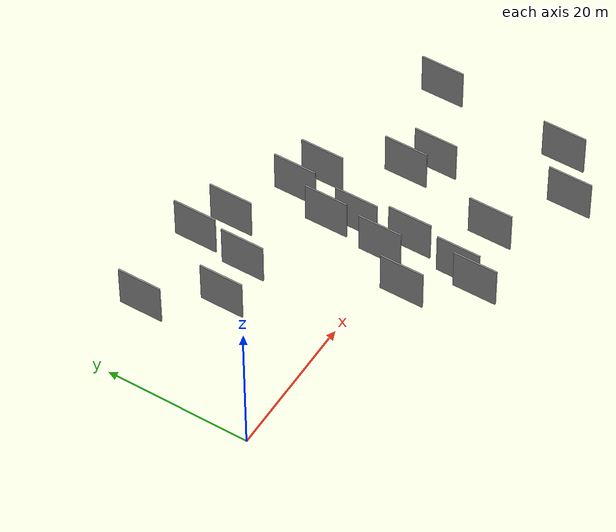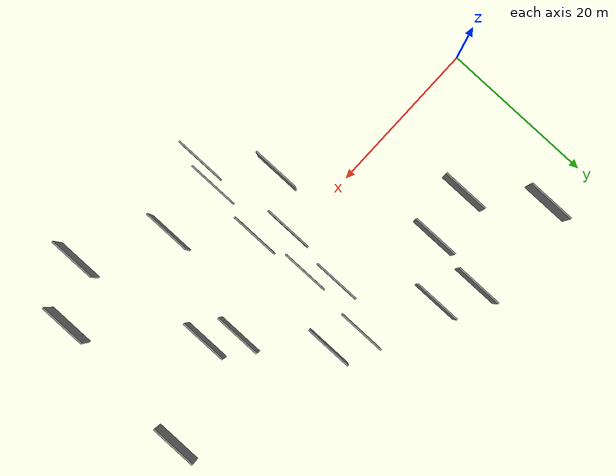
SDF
<sdf version="1.6">
 <world name="default">
  <scene>
   <sky><clouds><speed>12</speed></clouds></sky>
   <ambient>0.4 0.4 0.4 1</ambient>
   <background>0.7 0.7 0.7 1</background>
   <shadows>1</shadows>
  </scene>
  <gravity>0 0 -9.8066</gravity>
  <magnetic_field>6e-06 2.3e-05 -4.2e-05</magnetic_field>
  <physics default="0" name="default_physics" type="ode">
   <ode>
    <solver>
     <type>quick</type>
     <iters>10</iters>
     <sor>1.0</sor>
     <use_dynamic_moi_rescaling>0</use_dynamic_moi_rescaling>
    </solver>
    <constraints>
     <cfm>0</cfm>
     <erp>0.2</erp>
     <contact_max_correcting_vel>100</contact_max_correcting_vel>
     <contact_surface_layer>0.001</contact_surface_layer>
    </constraints>
   </ode>
   <max_step_size>0.004</max_step_size>
   <real_time_factor>1</real_time_factor>
   <real_time_update_rate>250</real_time_update_rate>
  </physics>
  <light name="sun" type="directional">
   <pose>0 0 10 0 0 0</pose>
   <diffuse>0.8 0.8 0.8 1</diffuse>
   <specular>0.2 0.2 0.2 1</specular>
   <attenuation>
    <range>1000</range>
    <constant>0.9</constant>
    <linear>0.01</linear>
    <quadratic>0.001</quadratic>
   </attenuation>
   <direction>-0.5 0.1 -0.9</direction>
  </light>
  <model name="grey_wall_1">
   <static>1</static>
   <pose>48.6045 -16.3556 5.0 0.000000 0.000000 1.570796</pose>
   <link name="link">
    <pose>0 0 3.00 0 0 0</pose>
    <collision name="collision"><geometry><box><size>6.00 0.2 6.00</size></box></geometry></collision>
    <visual name="visual">
     <cast_shadows>0</cast_shadows>
     <geometry><box><size>6.00 0.2 6.00</size></box></geometry>
     <material>
      <script>
       <uri>model://grey_wall/materials/scripts</uri>
       <uri>model://grey_wall/materials/textures</uri>
       <name>vrc/grey_wall</name>
      </script>
     </material>
    </visual>
   </link>
  </model>
  <model name="grey_wall_2">
   <static>1</static>
   <pose>6.7649 19.5103 5.0 0.000000 0.000000 1.570796</pose>
   <link name="link">
    <pose>0 0 3.00 0 0 0</pose>
    <collision name="collision"><geometry><box><size>6.00 0.2 6.00</size></box></geometry></collision>
    <visual name="visual">
     <cast_shadows>0</cast_shadows>
     <geometry><box><size>6.00 0.2 6.00</size></box></geometry>
     <material>
      <script>
       <uri>model://grey_wall/materials/scripts</uri>
       <uri>model://grey_wall/materials/textures</uri>
       <name>vrc/grey_wall</name>
      </script>
     </material>
    </visual>
   </link>
  </model>
  <model name="grey_wall_3">
   <static>1</static>
   <pose>18.6656 12.4914 5.0 0.000000 0.000000 1.570796</pose>
   <link name="link">
    <pose>0 0 3.00 0 0 0</pose>
    <collision name="collision"><geometry><box><size>6.00 0.2 6.00</size></box></geometry></collision>
    <visual name="visual">
     <cast_shadows>0</cast_shadows>
     <geometry><box><size>6.00 0.2 6.00</size></box></geometry>
     <material>
      <script>
       <uri>model://grey_wall/materials/scripts</uri>
       <uri>model://grey_wall/materials/textures</uri>
       <name>vrc/grey_wall</name>
      </script>
     </material>
    </visual>
   </link>
  </model>
  <model name="grey_wall_4">
   <static>1</static>
   <pose>12.4944 11.5218 5.0 0.000000 0.000000 1.570796</pose>
   <link name="link">
    <pose>0 0 3.00 0 0 0</pose>
    <collision name="collision"><geometry><box><size>6.00 0.2 6.00</size></box></geometry></collision>
    <visual name="visual">
     <cast_shadows>0</cast_shadows>
     <geometry><box><size>6.00 0.2 6.00</size></box></geometry>
     <material>
      <script>
       <uri>model://grey_wall/materials/scripts</uri>
       <uri>model://grey_wall/materials/textures</uri>
       <name>vrc/grey_wall</name>
      </script>
     </material>
    </visual>
   </link>
  </model>
  <model name="grey_wall_5">
   <static>1</static>
   <pose>38.9954 -10.5758 5.0 0.000000 0.000000 1.570796</pose>
   <link name="link">
    <pose>0 0 3.00 0 0 0</pose>
    <collision name="collision"><geometry><box><size>6.00 0.2 6.00</size></box></geometry></collision>
    <visual name="visual">
     <cast_shadows>0</cast_shadows>
     <geometry><box><size>6.00 0.2 6.00</size></box></geometry>
     <material>
      <script>
       <uri>model://grey_wall/materials/scripts</uri>
       <uri>model://grey_wall/materials/textures</uri>
       <name>vrc/grey_wall</name>
      </script>
     </material>
    </visual>
   </link>
  </model>
  <model name="grey_wall_6">
   <static>1</static>
   <pose>30.4145 -13.4627 5.0 0.000000 0.000000 1.570796</pose>
   <link name="link">
    <pose>0 0 3.00 0 0 0</pose>
    <collision name="collision"><geometry><box><size>6.00 0.2 6.00</size></box></geometry></collision>
    <visual name="visual">
     <cast_shadows>0</cast_shadows>
     <geometry><box><size>6.00 0.2 6.00</size></box></geometry>
     <material>
      <script>
       <uri>model://grey_wall/materials/scripts</uri>
       <uri>model://grey_wall/materials/textures</uri>
       <name>vrc/grey_wall</name>
      </script>
     </material>
    </visual>
   </link>
  </model>
  <model name="grey_wall_7">
   <static>1</static>
   <pose>32.5522 -2.9268 5.0 0.000000 0.000000 1.570796</pose>
   <link name="link">
    <pose>0 0 3.00 0 0 0</pose>
    <collision name="collision"><geometry><box><size>6.00 0.2 6.00</size></box></geometry></collision>
    <visual name="visual">
     <cast_shadows>0</cast_shadows>
     <geometry><box><size>6.00 0.2 6.00</size></box></geometry>
     <material>
      <script>
       <uri>model://grey_wall/materials/scripts</uri>
       <uri>model://grey_wall/materials/textures</uri>
       <name>vrc/grey_wall</name>
      </script>
     </material>
    </visual>
   </link>
  </model>
  <model name="grey_wall_8">
   <static>1</static>
   <pose>24.0452 17.6752 5.0 0.000000 0.000000 1.570796</pose>
   <link name="link">
    <pose>0 0 3.00 0 0 0</pose>
    <collision name="collision"><geometry><box><size>6.00 0.2 6.00</size></box></geometry></collision>
    <visual name="visual">
     <cast_shadows>0</cast_shadows>
     <geometry><box><size>6.00 0.2 6.00</size></box></geometry>
     <material>
      <script>
       <uri>model://grey_wall/materials/scripts</uri>
       <uri>model://grey_wall/materials/textures</uri>
       <name>vrc/grey_wall</name>
      </script>
     </material>
    </visual>
   </link>
  </model>
  <model name="grey_wall_9">
   <static>1</static>
   <pose>19.4940 19.9250 5.0 0.000000 0.000000 1.570796</pose>
   <link name="link">
    <pose>0 0 3.00 0 0 0</pose>
    <collision name="collision"><geometry><box><size>6.00 0.2 6.00</size></box></geometry></collision>
    <visual name="visual">
     <cast_shadows>0</cast_shadows>
     <geometry><box><size>6.00 0.2 6.00</size></box></geometry>
     <material>
      <script>
       <uri>model://grey_wall/materials/scripts</uri>
       <uri>model://grey_wall/materials/textures</uri>
       <name>vrc/grey_wall</name>
      </script>
     </material>
    </visual>
   </link>
  </model>
  <model name="grey_wall_10">
   <static>1</static>
   <pose>42.2725 3.4707 5.0 0.000000 0.000000 1.570796</pose>
   <link name="link">
    <pose>0 0 3.00 0 0 0</pose>
    <collision name="collision"><geometry><box><size>6.00 0.2 6.00</size></box></geometry></collision>
    <visual name="visual">
     <cast_shadows>0</cast_shadows>
     <geometry><box><size>6.00 0.2 6.00</size></box></geometry>
     <material>
      <script>
       <uri>model://grey_wall/materials/scripts</uri>
       <uri>model://grey_wall/materials/textures</uri>
       <name>vrc/grey_wall</name>
      </script>
     </material>
    </visual>
   </link>
  </model>
  <model name="grey_wall_11">
   <static>1</static>
   <pose>29.3836 -0.5814 5.0 0.000000 0.000000 1.570796</pose>
   <link name="link">
    <pose>0 0 3.00 0 0 0</pose>
    <collision name="collision"><geometry><box><size>6.00 0.2 6.00</size></box></geometry></collision>
    <visual name="visual">
     <cast_shadows>0</cast_shadows>
     <geometry><box><size>6.00 0.2 6.00</size></box></geometry>
     <material>
      <script>
       <uri>model://grey_wall/materials/scripts</uri>
       <uri>model://grey_wall/materials/textures</uri>
       <name>vrc/grey_wall</name>
      </script>
     </material>
    </visual>
   </link>
  </model>
  <model name="grey_wall_12">
   <static>1</static>
   <pose>36.2868 12.0492 5.0 0.000000 0.000000 1.570796</pose>
   <link name="link">
    <pose>0 0 3.00 0 0 0</pose>
    <collision name="collision"><geometry><box><size>6.00 0.2 6.00</size></box></geometry></collision>
    <visual name="visual">
     <cast_shadows>0</cast_shadows>
     <geometry><box><size>6.00 0.2 6.00</size></box></geometry>
     <material>
      <script>
       <uri>model://grey_wall/materials/scripts</uri>
       <uri>model://grey_wall/materials/textures</uri>
       <name>vrc/grey_wall</name>
      </script>
     </material>
    </visual>
   </link>
  </model>
  <model name="grey_wall_13">
   <static>1</static>
   <pose>31.7411 4.2411 5.0 0.000000 0.000000 1.570796</pose>
   <link name="link">
    <pose>0 0 3.00 0 0 0</pose>
    <collision name="collision"><geometry><box><size>6.00 0.2 6.00</size></box></geometry></collision>
    <visual name="visual">
     <cast_shadows>0</cast_shadows>
     <geometry><box><size>6.00 0.2 6.00</size></box></geometry>
     <material>
      <script>
       <uri>model://grey_wall/materials/scripts</uri>
       <uri>model://grey_wall/materials/textures</uri>
       <name>vrc/grey_wall</name>
      </script>
     </material>
    </visual>
   </link>
  </model>
  <model name="grey_wall_14">
   <static>1</static>
   <pose>45.3859 1.0277 5.0 0.000000 0.000000 1.570796</pose>
   <link name="link">
    <pose>0 0 3.00 0 0 0</pose>
    <collision name="collision"><geometry><box><size>6.00 0.2 6.00</size></box></geometry></collision>
    <visual name="visual">
     <cast_shadows>0</cast_shadows>
     <geometry><box><size>6.00 0.2 6.00</size></box></geometry>
     <material>
      <script>
       <uri>model://grey_wall/materials/scripts</uri>
       <uri>model://grey_wall/materials/textures</uri>
       <name>vrc/grey_wall</name>
      </script>
     </material>
    </visual>
   </link>
  </model>
  <model name="grey_wall_15">
   <static>1</static>
   <pose>30.0718 7.5834 5.0 0.000000 0.000000 1.570796</pose>
   <link name="link">
    <pose>0 0 3.00 0 0 0</pose>
    <collision name="collision"><geometry><box><size>6.00 0.2 6.00</size></box></geometry></collision>
    <visual name="visual">
     <cast_shadows>0</cast_shadows>
     <geometry><box><size>6.00 0.2 6.00</size></box></geometry>
     <material>
      <script>
       <uri>model://grey_wall/materials/scripts</uri>
       <uri>model://grey_wall/materials/textures</uri>
       <name>vrc/grey_wall</name>
      </script>
     </material>
    </visual>
   </link>
  </model>
  <model name="grey_wall_16">
   <static>1</static>
   <pose>31.4906 -10.4519 5.0 0.000000 0.000000 1.570796</pose>
   <link name="link">
    <pose>0 0 3.00 0 0 0</pose>
    <collision name="collision"><geometry><box><size>6.00 0.2 6.00</size></box></geometry></collision>
    <visual name="visual">
     <cast_shadows>0</cast_shadows>
     <geometry><box><size>6.00 0.2 6.00</size></box></geometry>
     <material>
      <script>
       <uri>model://grey_wall/materials/scripts</uri>
       <uri>model://grey_wall/materials/textures</uri>
       <name>vrc/grey_wall</name>
      </script>
     </material>
    </visual>
   </link>
  </model>
  <model name="grey_wall_17">
   <static>1</static>
   <pose>54.8873 -12.0025 5.0 0.000000 0.000000 1.570796</pose>
   <link name="link">
    <pose>0 0 3.00 0 0 0</pose>
    <collision name="collision"><geometry><box><size>6.00 0.2 6.00</size></box></geometry></collision>
    <visual name="visual">
     <cast_shadows>0</cast_shadows>
     <geometry><box><size>6.00 0.2 6.00</size></box></geometry>
     <material>
      <script>
       <uri>model://grey_wall/materials/scripts</uri>
       <uri>model://grey_wall/materials/textures</uri>
       <name>vrc/grey_wall</name>
      </script>
     </material>
    </visual>
   </link>
  </model>
  <model name="grey_wall_18">
   <static>1</static>
   <pose>25.3371 -6.1570 5.0 0.000000 0.000000 1.570796</pose>
   <link name="link">
    <pose>0 0 3.00 0 0 0</pose>
    <collision name="collision"><geometry><box><size>6.00 0.2 6.00</size></box></geometry></collision>
    <visual name="visual">
     <cast_shadows>0</cast_shadows>
     <geometry><box><size>6.00 0.2 6.00</size></box></geometry>
     <material>
      <script>
       <uri>model://grey_wall/materials/scripts</uri>
       <uri>model://grey_wall/materials/textures</uri>
       <name>vrc/grey_wall</name>
      </script>
     </material>
    </visual>
   </link>
  </model>
  <model name="grey_wall_19">
   <static>1</static>
   <pose>32.4318 13.6198 5.0 0.000000 0.000000 1.570796</pose>
   <link name="link">
    <pose>0 0 3.00 0 0 0</pose>
    <collision name="collision"><geometry><box><size>6.00 0.2 6.00</size></box></geometry></collision>
    <visual name="visual">
     <cast_shadows>0</cast_shadows>
     <geometry><box><size>6.00 0.2 6.00</size></box></geometry>
     <material>
      <script>
       <uri>model://grey_wall/materials/scripts</uri>
       <uri>model://grey_wall/materials/textures</uri>
       <name>vrc/grey_wall</name>
      </script>
     </material>
    </visual>
   </link>
  </model>
  <model name="grey_wall_20">
   <static>1</static>
   <pose>56.4746 6.6306 5.0 0.000000 0.000000 1.570796</pose>
   <link name="link">
    <pose>0 0 3.00 0 0 0</pose>
    <collision name="collision"><geometry><box><size>6.00 0.2 6.00</size></box></geometry></collision>
    <visual name="visual">
     <cast_shadows>0</cast_shadows>
     <geometry><box><size>6.00 0.2 6.00</size></box></geometry>
     <material>
      <script>
       <uri>model://grey_wall/materials/scripts</uri>
       <uri>model://grey_wall/materials/textures</uri>
       <name>vrc/grey_wall</name>
      </script>
     </material>
    </visual>
   </link>
  </model>
 </world>
</sdf>
